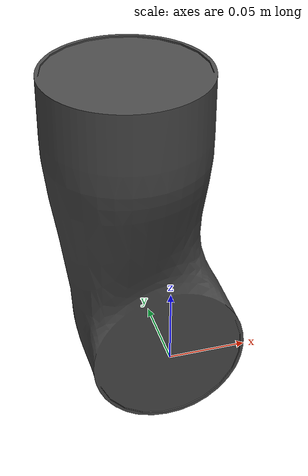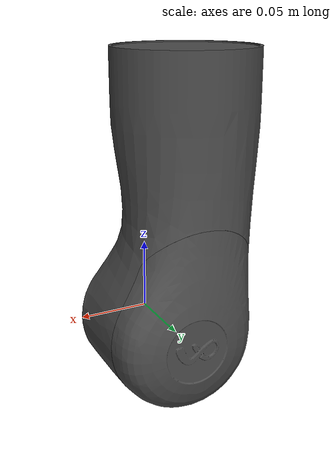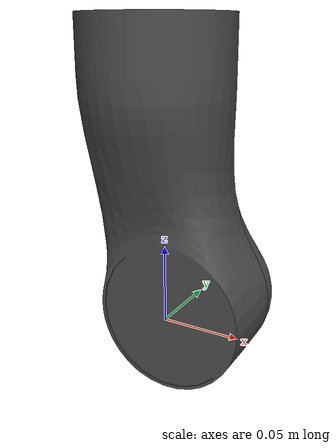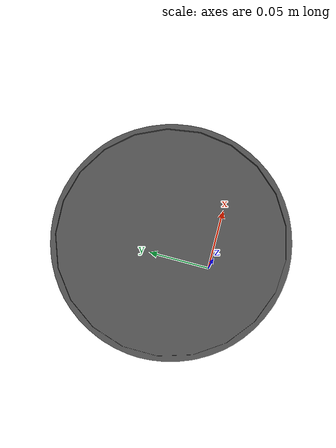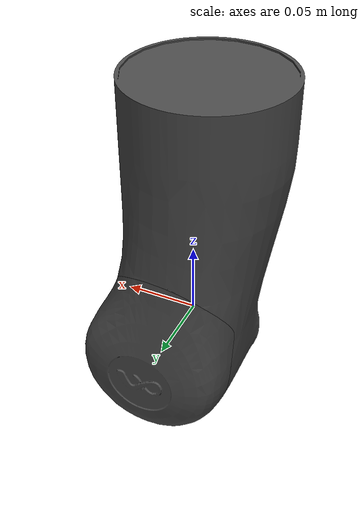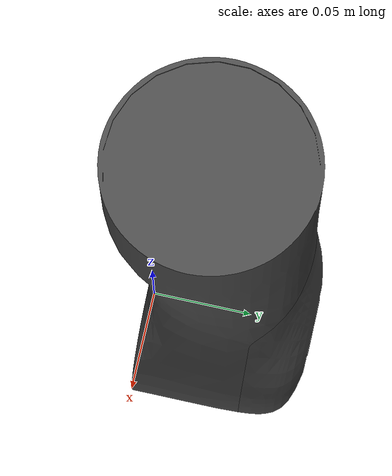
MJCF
<mujoco model="link4">
  <default>
    <default class="visual">
      <geom group="2" type="mesh" contype="0" conaffinity="0"/>
    </default>
    <default class="collision">
      <geom group="3" type="mesh"/>
    </default>
  </default>
  <asset>
    <material name="75,75,75_14.001" specular="1.0" shininess="0.2" rgba="0.294118 0.294118 0.294118 1.000000"/>
    <material name="75,75,75_6.001" specular="1.0" shininess="0.2" rgba="0.294118 0.294118 0.294118 1.000000"/>
    <mesh file="link4_0.obj"/>
    <mesh file="link4_1.obj"/>
  </asset>
  <worldbody>
    <body name="link4">
      <geom mesh="link4_0" material="75,75,75_6.001" class="visual"/>
      <geom mesh="link4_1" material="75,75,75_14.001" class="visual"/>
      <geom mesh="link4_0" class="collision"/>
      <geom mesh="link4_1" class="collision"/>
    </body>
  </worldbody>
</mujoco>
